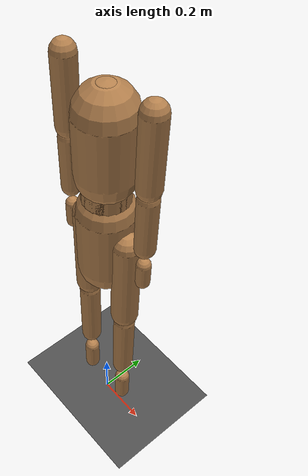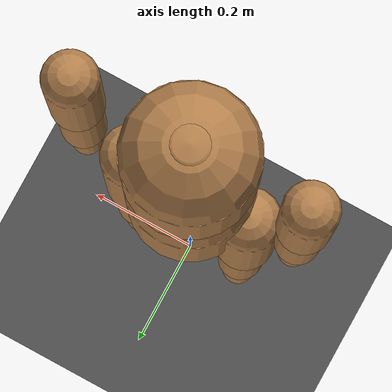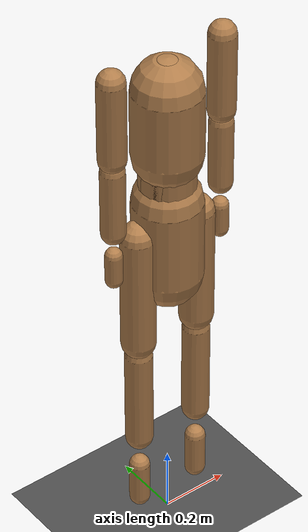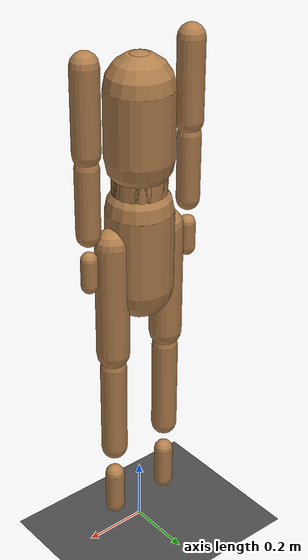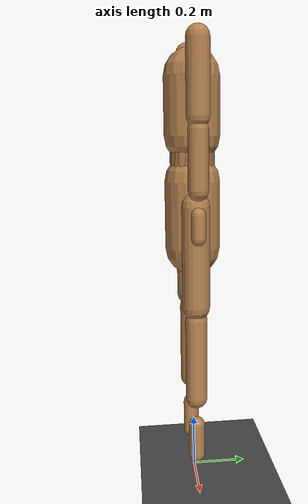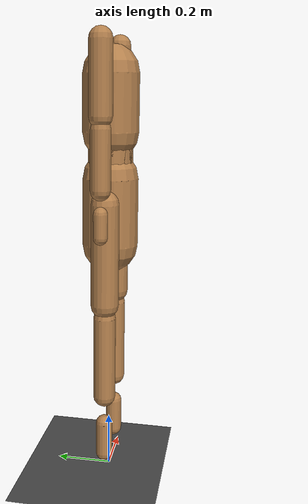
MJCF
<mujoco model="high_dof_tree">
  <option gravity="0 0 -9.81" timestep="0.002"/>

  <default>
    <geom type="capsule" rgba="0.7 0.5 0.3 1"/>
    <joint damping="0.5" armature="0.01"/>
    <motor gear="20"/>
  </default>

  <worldbody>
    <geom name="floor" type="plane" size="10 10 0.1" rgba="0.3 0.3 0.3 1"/>

    <!-- Root: pelvis with freejoint -->
    <body name="pelvis" pos="0 0 1.0">
      <freejoint name="root"/>
      <geom size="0.1 0.12" mass="8"/>

      <!-- Spine chain: 4 segments -->
      <body name="spine1" pos="0 0 0.14">
        <joint name="sp1_x" type="hinge" axis="1 0 0" range="-30 30"/>
        <joint name="sp1_y" type="hinge" axis="0 1 0" range="-30 30"/>
        <joint name="sp1_z" type="hinge" axis="0 0 1" range="-20 20"/>
        <geom size="0.08 0.1" mass="4"/>

        <body name="spine2" pos="0 0 0.12">
          <joint name="sp2_x" type="hinge" axis="1 0 0" range="-25 25"/>
          <joint name="sp2_y" type="hinge" axis="0 1 0" range="-25 25"/>
          <joint name="sp2_z" type="hinge" axis="0 0 1" range="-15 15"/>
          <geom size="0.08 0.1" mass="4"/>

          <body name="chest" pos="0 0 0.12">
            <joint name="ch_x" type="hinge" axis="1 0 0" range="-20 20"/>
            <joint name="ch_y" type="hinge" axis="0 1 0" range="-20 20"/>
            <joint name="ch_z" type="hinge" axis="0 0 1" range="-15 15"/>
            <geom size="0.1 0.1" mass="6"/>

            <body name="neck" pos="0 0 0.12">
              <joint name="nk_x" type="hinge" axis="1 0 0" range="-40 40"/>
              <joint name="nk_y" type="hinge" axis="0 1 0" range="-40 40"/>
              <joint name="nk_z" type="hinge" axis="0 0 1" range="-30 30"/>
              <geom type="sphere" size="0.08" mass="4"/>
            </body>

            <!-- Left arm: 3 segments -->
            <body name="l_shoulder" pos="0.18 0 0.08">
              <joint name="ls_x" type="hinge" axis="1 0 0" range="-90 90"/>
              <joint name="ls_y" type="hinge" axis="0 1 0" range="-90 90"/>
              <joint name="ls_z" type="hinge" axis="0 0 1" range="-90 90"/>
              <geom size="0.04 0.12" mass="1.5"/>

              <body name="l_elbow" pos="0 0 -0.26">
                <joint name="le_x" type="hinge" axis="1 0 0" range="-120 5"/>
                <joint name="le_y" type="hinge" axis="0 1 0" range="-90 90"/>
                <joint name="le_z" type="hinge" axis="0 0 1" range="-90 90"/>
                <geom size="0.035 0.1" mass="1.0"/>

                <body name="l_hand" pos="0 0 -0.22">
                  <joint name="lh_x" type="hinge" axis="1 0 0" range="-60 60"/>
                  <joint name="lh_y" type="hinge" axis="0 1 0" range="-60 60"/>
                  <joint name="lh_z" type="hinge" axis="0 0 1" range="-60 60"/>
                  <geom size="0.025 0.04" mass="0.3"/>
                </body>
              </body>
            </body>

            <!-- Right arm: 3 segments -->
            <body name="r_shoulder" pos="-0.18 0 0.08">
              <joint name="rs_x" type="hinge" axis="1 0 0" range="-90 90"/>
              <joint name="rs_y" type="hinge" axis="0 1 0" range="-90 90"/>
              <joint name="rs_z" type="hinge" axis="0 0 1" range="-90 90"/>
              <geom size="0.04 0.12" mass="1.5"/>

              <body name="r_elbow" pos="0 0 -0.26">
                <joint name="re_x" type="hinge" axis="1 0 0" range="-120 5"/>
                <joint name="re_y" type="hinge" axis="0 1 0" range="-90 90"/>
                <joint name="re_z" type="hinge" axis="0 0 1" range="-90 90"/>
                <geom size="0.035 0.1" mass="1.0"/>

                <body name="r_hand" pos="0 0 -0.22">
                  <joint name="rh_x" type="hinge" axis="1 0 0" range="-60 60"/>
                  <joint name="rh_y" type="hinge" axis="0 1 0" range="-60 60"/>
                  <joint name="rh_z" type="hinge" axis="0 0 1" range="-60 60"/>
                  <geom size="0.025 0.04" mass="0.3"/>
                </body>
              </body>
            </body>
          </body>
        </body>
      </body>

      <!-- Left leg: 3 segments -->
      <body name="l_hip" pos="0.1 0 -0.14">
        <joint name="lh2_x" type="hinge" axis="1 0 0" range="-60 120"/>
        <joint name="lh2_y" type="hinge" axis="0 1 0" range="-45 45"/>
        <joint name="lh2_z" type="hinge" axis="0 0 1" range="-45 45"/>
        <geom size="0.05 0.18" mass="4"/>

        <body name="l_knee" pos="0 0 -0.38">
          <joint name="lk_x" type="hinge" axis="1 0 0" range="-5 130"/>
          <joint name="lk_y" type="hinge" axis="0 1 0" range="-10 10"/>
          <joint name="lk_z" type="hinge" axis="0 0 1" range="-10 10"/>
          <geom size="0.04 0.15" mass="2.5"/>

          <body name="l_ankle" pos="0 0 -0.32">
            <joint name="la_x" type="hinge" axis="1 0 0" range="-40 40"/>
            <joint name="la_y" type="hinge" axis="0 1 0" range="-30 30"/>
            <joint name="la_z" type="hinge" axis="0 0 1" range="-20 20"/>
            <geom size="0.03 0.06" mass="0.8"/>
          </body>
        </body>
      </body>

      <!-- Right leg: 3 segments -->
      <body name="r_hip" pos="-0.1 0 -0.14">
        <joint name="rh2_x" type="hinge" axis="1 0 0" range="-60 120"/>
        <joint name="rh2_y" type="hinge" axis="0 1 0" range="-45 45"/>
        <joint name="rh2_z" type="hinge" axis="0 0 1" range="-45 45"/>
        <geom size="0.05 0.18" mass="4"/>

        <body name="r_knee" pos="0 0 -0.38">
          <joint name="rk_x" type="hinge" axis="1 0 0" range="-5 130"/>
          <joint name="rk_y" type="hinge" axis="0 1 0" range="-10 10"/>
          <joint name="rk_z" type="hinge" axis="0 0 1" range="-10 10"/>
          <geom size="0.04 0.15" mass="2.5"/>

          <body name="r_ankle" pos="0 0 -0.32">
            <joint name="ra_x" type="hinge" axis="1 0 0" range="-40 40"/>
            <joint name="ra_y" type="hinge" axis="0 1 0" range="-30 30"/>
            <joint name="ra_z" type="hinge" axis="0 0 1" range="-20 20"/>
            <geom size="0.03 0.06" mass="0.8"/>
          </body>
        </body>
      </body>
    </body>
  </worldbody>

  <actuator>
    <!-- Spine (12) -->
    <motor joint="sp1_x"/><motor joint="sp1_y"/><motor joint="sp1_z"/>
    <motor joint="sp2_x"/><motor joint="sp2_y"/><motor joint="sp2_z"/>
    <motor joint="ch_x"/><motor joint="ch_y"/><motor joint="ch_z"/>
    <motor joint="nk_x"/><motor joint="nk_y"/><motor joint="nk_z"/>
    <!-- Left arm (9) -->
    <motor joint="ls_x"/><motor joint="ls_y"/><motor joint="ls_z"/>
    <motor joint="le_x"/><motor joint="le_y"/><motor joint="le_z"/>
    <motor joint="lh_x"/><motor joint="lh_y"/><motor joint="lh_z"/>
    <!-- Right arm (9) -->
    <motor joint="rs_x"/><motor joint="rs_y"/><motor joint="rs_z"/>
    <motor joint="re_x"/><motor joint="re_y"/><motor joint="re_z"/>
    <motor joint="rh_x"/><motor joint="rh_y"/><motor joint="rh_z"/>
    <!-- Left leg (9) -->
    <motor joint="lh2_x"/><motor joint="lh2_y"/><motor joint="lh2_z"/>
    <motor joint="lk_x"/><motor joint="lk_y"/><motor joint="lk_z"/>
    <motor joint="la_x"/><motor joint="la_y"/><motor joint="la_z"/>
    <!-- Right leg (9) -->
    <motor joint="rh2_x"/><motor joint="rh2_y"/><motor joint="rh2_z"/>
    <motor joint="rk_x"/><motor joint="rk_y"/><motor joint="rk_z"/>
    <motor joint="ra_x"/><motor joint="ra_y"/><motor joint="ra_z"/>
  </actuator>
</mujoco>
